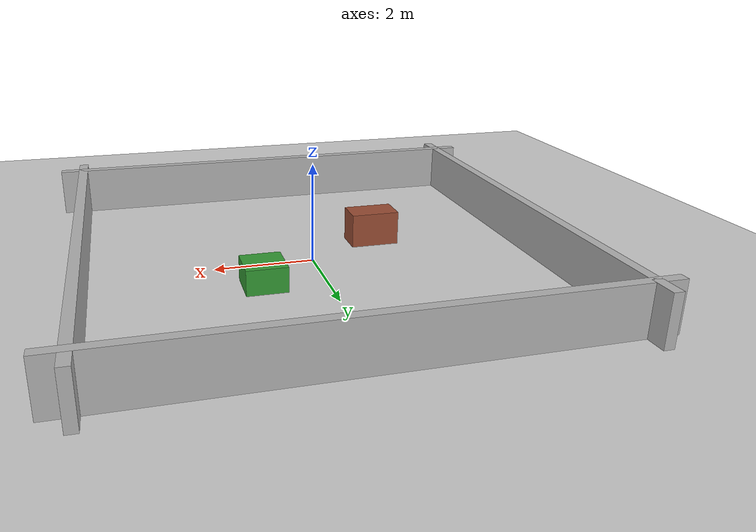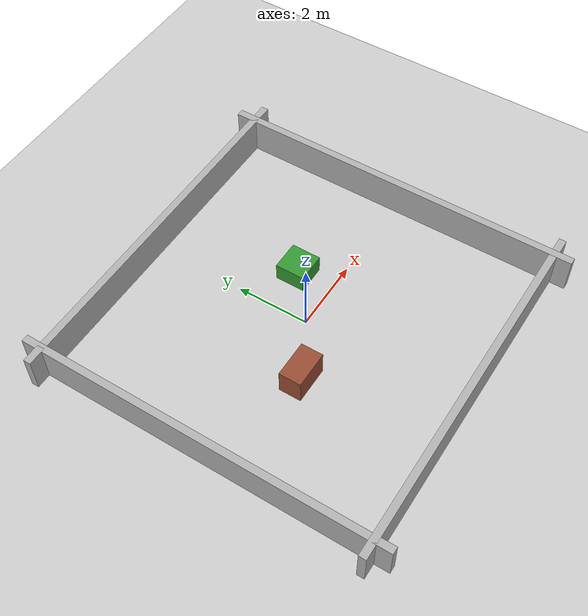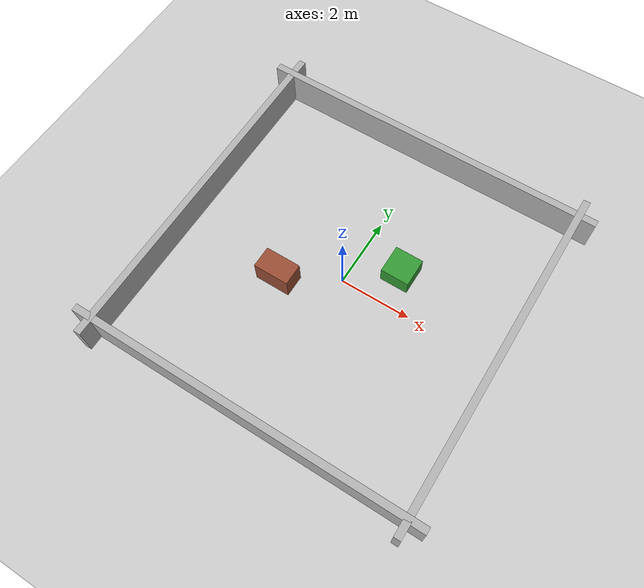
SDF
<?xml version="1.0" ?>
<sdf version="1.6">
  <world name="nav_test_world">
    <include>
      <uri>model://sun</uri>
    </include>
    <include>
      <uri>model://ground_plane</uri>
    </include>

    <model name="wall_north">
      <static>true</static>
      <pose>0 4.5 0.5 0 0 0</pose>
      <link name="link">
        <collision name="collision">
          <geometry>
            <box>
              <size>10 0.2 1.0</size>
            </box>
          </geometry>
        </collision>
        <visual name="visual">
          <geometry>
            <box>
              <size>10 0.2 1.0</size>
            </box>
          </geometry>
          <material>
            <ambient>0.7 0.7 0.7 1</ambient>
            <diffuse>0.7 0.7 0.7 1</diffuse>
          </material>
        </visual>
      </link>
    </model>

    <model name="wall_south">
      <static>true</static>
      <pose>0 -4.5 0.5 0 0 0</pose>
      <link name="link">
        <collision name="collision">
          <geometry>
            <box>
              <size>10 0.2 1.0</size>
            </box>
          </geometry>
        </collision>
        <visual name="visual">
          <geometry>
            <box>
              <size>10 0.2 1.0</size>
            </box>
          </geometry>
          <material>
            <ambient>0.7 0.7 0.7 1</ambient>
            <diffuse>0.7 0.7 0.7 1</diffuse>
          </material>
        </visual>
      </link>
    </model>

    <model name="wall_east">
      <static>true</static>
      <pose>4.5 0 0.5 0 0 1.5708</pose>
      <link name="link">
        <collision name="collision">
          <geometry>
            <box>
              <size>10 0.2 1.0</size>
            </box>
          </geometry>
        </collision>
        <visual name="visual">
          <geometry>
            <box>
              <size>10 0.2 1.0</size>
            </box>
          </geometry>
          <material>
            <ambient>0.7 0.7 0.7 1</ambient>
            <diffuse>0.7 0.7 0.7 1</diffuse>
          </material>
        </visual>
      </link>
    </model>

    <model name="wall_west">
      <static>true</static>
      <pose>-4.5 0 0.5 0 0 1.5708</pose>
      <link name="link">
        <collision name="collision">
          <geometry>
            <box>
              <size>10 0.2 1.0</size>
            </box>
          </geometry>
        </collision>
        <visual name="visual">
          <geometry>
            <box>
              <size>10 0.2 1.0</size>
            </box>
          </geometry>
          <material>
            <ambient>0.7 0.7 0.7 1</ambient>
            <diffuse>0.7 0.7 0.7 1</diffuse>
          </material>
        </visual>
      </link>
    </model>

    <model name="obstacle_box_1">
      <static>true</static>
      <pose>1.2 1.0 0.25 0 0 0</pose>
      <link name="link">
        <collision name="collision">
          <geometry>
            <box>
              <size>0.8 0.8 0.5</size>
            </box>
          </geometry>
        </collision>
        <visual name="visual">
          <geometry>
            <box>
              <size>0.8 0.8 0.5</size>
            </box>
          </geometry>
          <material>
            <ambient>0.2 0.6 0.2 1</ambient>
            <diffuse>0.2 0.6 0.2 1</diffuse>
          </material>
        </visual>
      </link>
    </model>

    <model name="obstacle_box_2">
      <static>true</static>
      <pose>-1.5 -0.8 0.35 0 0 0</pose>
      <link name="link">
        <collision name="collision">
          <geometry>
            <box>
              <size>1.0 0.6 0.7</size>
            </box>
          </geometry>
        </collision>
        <visual name="visual">
          <geometry>
            <box>
              <size>1.0 0.6 0.7</size>
            </box>
          </geometry>
          <material>
            <ambient>0.6 0.3 0.2 1</ambient>
            <diffuse>0.6 0.3 0.2 1</diffuse>
          </material>
        </visual>
      </link>
    </model>
  </world>
</sdf>
